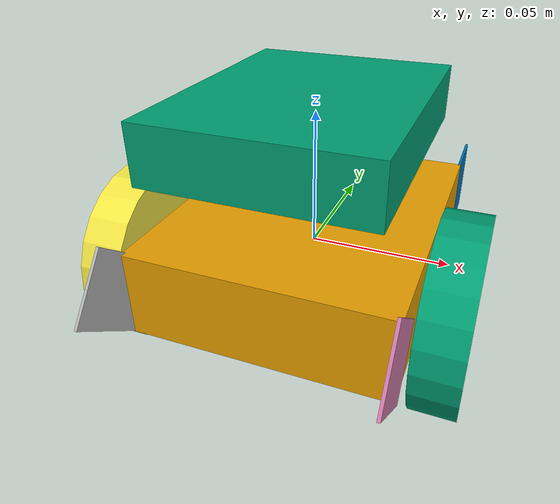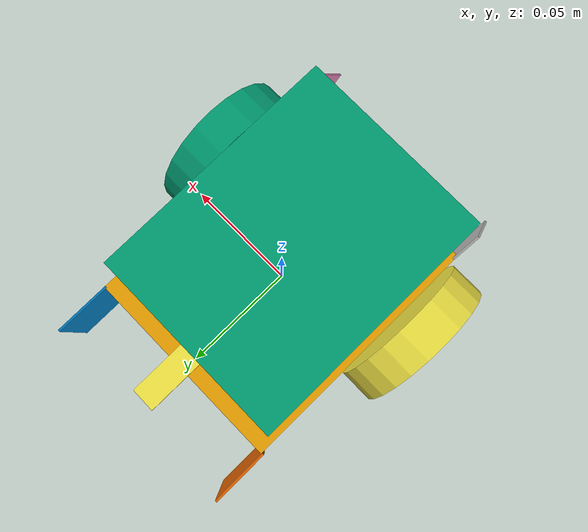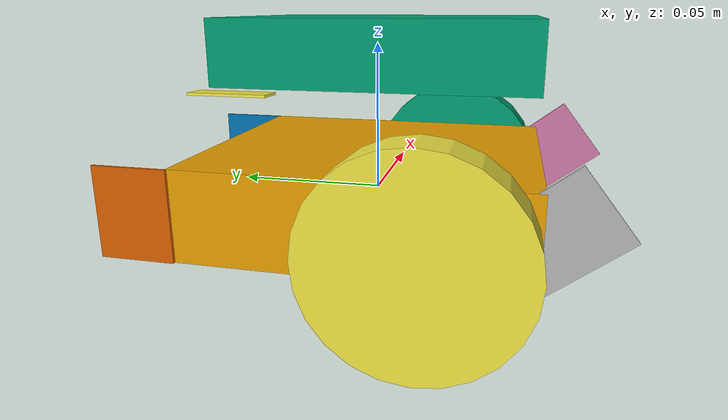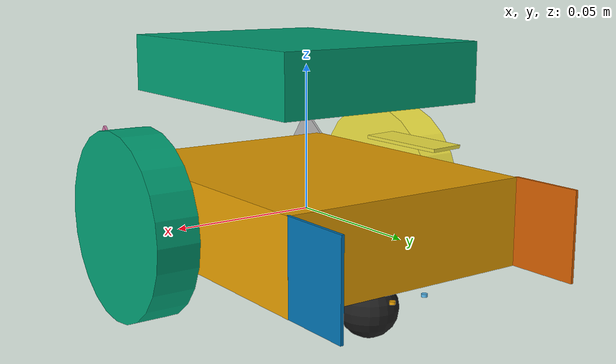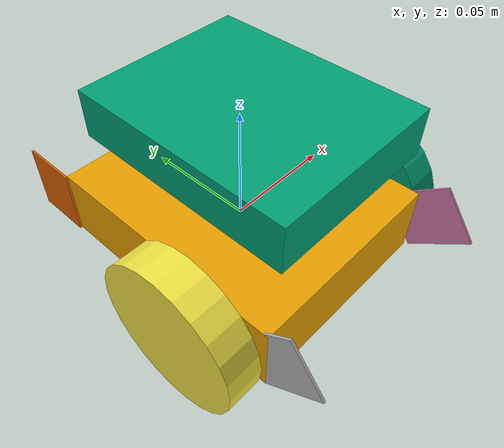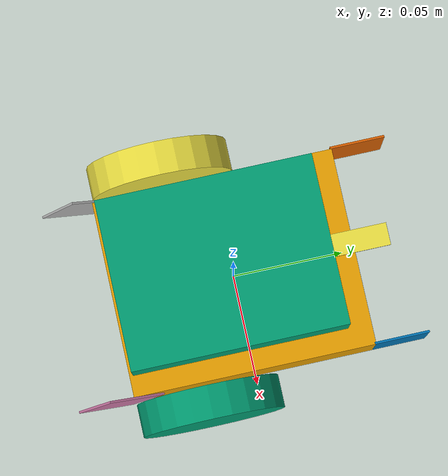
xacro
<?xml version='1.0'?>

<robot name="myrobot" xmlns:xacro="http://www.ros.org/wiki/xacro">

  <xacro:include filename="$(find mybot_description)/urdf/mybot.gazebo" />
  <xacro:include filename="$(find mybot_description)/urdf/materials.xacro" />
  <xacro:include filename="$(find mybot_description)/urdf/macros.xacro" />

  <link name='chassis'>
    <pose>0 0 0.1 0 0 0</pose>

    <inertial>
      <mass value="60.0"/>
      <origin xyz="0.0 0 0.1" rpy=" 0 0 0"/>
      <inertia
          ixx="0.1" ixy="0" ixz="0"
          iyy="0.1" iyz="0"
          izz="0.1"
      />
    </inertial>

    <collision name='collision'>
      <geometry>
        <box size=".09 .11 .03"/>
      </geometry>
    </collision>

    <visual name='chassis_visual'>
      <origin xyz="0 0 0" rpy=" 0 0 0"/>
      <geometry>
        <box size=".09 .11 .03"/>
      </geometry>
    </visual>
	</link>

  <link name='caster'>

    <visual>
      <origin rpy="0 0 0" xyz="0 0 0"/>
      <geometry>
        <sphere radius="0.01"/>
      </geometry>
      <material name="Black"/>
    </visual>
    <collision>
      <geometry>
        <sphere radius="0.01"/>
      </geometry>
      <origin rpy="0 0 0" xyz="0 0 0"/>
    </collision>
    <inertial>
      <mass value="0.5"/>
      <origin xyz="0 0 0"/>
      <inertia ixx="0.001" ixy="0.0" ixz="0.0" iyy="0.001" iyz="0.0" izz="0.001"/>
    </inertial>
</link>

  <link name='toit'>
    <pose>0 0 0 0 0 0</pose>

    <inertial>
      <mass value="0"/>
      <origin xyz="0 0 0" rpy=" 0 0 0"/>
      <inertia
          ixx="1.0" ixy="0" ixz="0"
          iyy="1.0" iyz="0"
          izz="1.0"
      />
    </inertial>

    <collision name='collision'>
      <geometry>
        <box size="0.075 0.095 0.02"/>
      </geometry>
    </collision>

    <visual name='toit_visual'>
      <origin xyz="0 0 0" rpy=" 0 0 0"/>
      <geometry>
        <box size="0.075 0.095 0.02"/>
      </geometry>
    </visual>
	</link>

	  <link name='SonarSensor'>
    <pose>0 0 0 0 0 0</pose>

    <inertial>
      <mass value="10"/>
      <origin xyz="0 0 0" rpy=" 0 0 0"/>
      <inertia
          ixx="1.0" ixy="0" ixz="0"
          iyy="1.0" iyz="0"
          izz="1.0"
      />
    </inertial>

    <collision name='collision'>
      <geometry>
        <box size="0.03 0.001 0.01"/>
      </geometry>
    </collision>

    <visual name='SonarSensor_visual'>
      <origin xyz="0 0 0" rpy=" 0 0 0"/>
      <geometry>
        <box size="0.03 0.001 0.01"/>
      </geometry>
    </visual>
	</link>

	  <link name='machin av d'>
    <pose>0 0 0 0 0 0</pose>

    <inertial>
      <mass value="0"/>
      <origin xyz="0 0 0" rpy=" 0 0 0"/>
      <inertia
          ixx="1.0" ixy="0" ixz="0"
          iyy="1.0" iyz="0"
          izz="1.0"
      />
    </inertial>

    <collision name='collision'>
      <geometry>
        <box size="0.001 0.025 0.032"/>
      </geometry>
    </collision>

    <visual name='machin av d_visual'>
      <origin xyz="0 0 0" rpy=" 0 0 0"/>
      <geometry>
        <box size="0.001 0.025 0.03"/>
      </geometry>
    </visual>
</link>

	  <link name='machin av g'>
    <pose>0 0 0 0 0 0</pose>

    <inertial>
      <mass value="0"/>
      <origin xyz="0 0 0" rpy=" 0 0 0"/>
      <inertia
          ixx="1.0" ixy="0" ixz="0"
          iyy="1.0" iyz="0"
          izz="1.0"
      />
    </inertial>

    <collision name='collision'>
      <geometry>
        <box size="0.001 0.025 0.032"/>
      </geometry>
    </collision>

    <visual name='machin av g_visual'>
      <origin xyz="0 0 0" rpy=" 0 0 0"/>
      <geometry>
        <box size="0.001 0.025 0.03"/>
      </geometry>
    </visual>
	</link>

	<link name='machin ar d'>
    <pose>0 0 0 0 0 0</pose>

    <inertial>
      <mass value="0"/>
      <origin xyz="0 0 0" rpy=" 0 0 0"/>
      <inertia
          ixx="1.0" ixy="0" ixz="0"
          iyy="1.0" iyz="0"
          izz="1.0"
      />
    </inertial>

    <collision name='collision'>
      <geometry>
        <box size="0.001 0.025 0.03"/>
      </geometry>
    </collision>

    <visual name='machin ar d_visual'>
      <origin xyz="0 0 0" rpy=" 0 0 0"/>
      <geometry>
        <box size="0.001 0.025 0.03"/>
      </geometry>
    </visual>
	</link>

	<link name='machin ar g'>
    <pose>0 0 0 0 0 0</pose>

    <inertial>
      <mass value="0"/>
      <origin xyz="0 0 0" rpy=" 0 0 0"/>
      <inertia
          ixx="1.0" ixy="0" ixz="0"
          iyy="1.0" iyz="0"
          izz="1.0"
      />
    </inertial>

    <collision name='collision'>
      <geometry>
        <box size="0.001 0.025 0.03"/>
      </geometry>
    </collision>

    <visual name='machin ar g_visual'>
      <origin xyz="0 0 0" rpy=" 0 0 0"/>
      <geometry>
        <box size="0.001 0.025 0.03"/>
      </geometry>
    </visual>
	</link>

  <link name="suiveurLigneD">
    <origin xyz="0 0 0" rpy="0 0 0"/>
    <collision name="collision">
      <origin xyz="0 0 0" rpy="0 1.5707 0"/>
      <geometry>
        <cylinder radius="0.001" length="0.001"/>
      </geometry>
    </collision>
    <visual name="suiveurLigneD_visual">
      <origin xyz="0 0 0" rpy="0 1.5707 0"/>
      <geometry>
        <cylinder radius="0.001" length="0.001"/>
      </geometry>
    </visual>
    <inertial>
      <origin xyz="0 0 0" rpy="0 -0 0"/>
      <mass value="0"/>
      <cylinder_inertia m="5" r="0.1" h="0.05"/>
      <inertia
        ixx="1.0" ixy="0.0" ixz="0.0"
        iyy="1.0" iyz="0.0"
        izz="1.0"/>
    </inertial>
  </link>

    <link name="suiveurLigneG">
    <origin xyz="0 0 0" rpy="0 0 0"/>
    <collision name="collision">
      <origin xyz="0 0 0" rpy="0 1.5707 0"/>
      <geometry>
        <cylinder radius="0.001" length="0.001"/>
      </geometry>
    </collision>
    <visual name="suiveurLigneG_visual">
      <origin xyz="0 0 0" rpy="0 1.5707 0"/>
      <geometry>
        <cylinder radius="0.001" length="0.001"/>
      </geometry>
    </visual>
    <inertial>
      <origin xyz="0 0 0" rpy="0 -0 0"/>
      <mass value="0"/>
      <cylinder_inertia m="5" r="0.1" h="0.05"/>
      <inertia
        ixx="1.0" ixy="0.0" ixz="0.0"
        iyy="1.0" iyz="0.0"
        izz="1.0"/>
    </inertial>
  </link>

  <link name="right_wheel">
    <origin xyz="0 0 0" rpy="0 0 0"/>
    <collision name="collision">
      <origin xyz="0 0 0" rpy="0 1.5707 1.5707"/>
      <geometry>
        <cylinder radius="0.0325" length="0.015"/>
      </geometry>
    </collision>
    <visual name="right_wheel_visual">
      <origin xyz="0 0 0" rpy="1.5707 -0 0"/>
      <geometry>
        <cylinder radius="0.0325" length="0.015"/>
      </geometry>
    </visual>
    <inertial>
      <origin xyz="0 0 0" rpy="0 0 0"/>
      <mass value="0.5"/>
      <cylinder_inertia m="5" r="0.1" h="0.05"/>
      <inertia
        ixx="1.0" ixy="0.0" ixz="0.0"
        iyy="1.0" iyz="0.0"
        izz="1.0"/>
    </inertial>
  </link>

  <link name="left_wheel">
    <origin xyz="0 0 0" rpy="0 0 0"/>
    <collision name="collision">
      <origin xyz="0 0 0" rpy="0 1.5707 1.5707"/>
      <geometry>
        <cylinder radius="0.0325" length="0.015"/>
      </geometry>
    </collision>
    <visual name="left_wheel_visual">
      <origin xyz="0 0 0" rpy="1.5707 -0 0"/>
      <geometry>
        <cylinder radius="0.0325" length="0.015"/>
      </geometry>
    </visual>
    <inertial>
      <origin xyz="0 0 0" rpy="0 -0 0"/>
      <mass value="0.5"/>
      <cylinder_inertia m="5" r="0.1" h="0.05"/>
      <inertia
        ixx="1.0" ixy="0.0" ixz="0.0"
        iyy="1.0" iyz="0.0"
        izz="1.0"/>
    </inertial>
  </link>

  <joint type="fixed" name="Joint0">
    <origin xyz="0 -0.005008 0.048699" rpy="0 0 0"/>
    <child link="toit"/>
    <parent link="chassis"/>
    <joint_properties damping="0.0" friction="0.0"/>
  </joint>

    <joint type="fixed" name="Joint1">
    <origin xyz="-0.000058000 0.054542000 0.031253000" rpy="1.60103 0 1.5707"/>
    <child link="SonarSensor"/>
    <parent link="chassis"/>
    <joint_properties damping="0.0" friction="0.0"/>
  </joint>

    <joint type="fixed" name="Joint2">
    <origin xyz="0.044487000 0.066911000 0.000064000" rpy="2.2e-05 -6.4e-05 0.000748"/>
    <child link="machin av d"/>
    <parent link="chassis"/>
    <joint_properties damping="0.0" friction="0.0"/>
  </joint>

    <joint type="fixed" name="Joint3">
    <origin xyz="-0.045557000 0.066877000 0.000061000" rpy="3.3e-05 -9.6e-05 0.001122"/>
    <child link="machin av g"/>
    <parent link="chassis"/>
    <joint_properties damping="0.0" friction="0.0"/>
  </joint>

      <joint type="fixed" name="Joint4">
    <origin xyz="0.045503000 -0.061097000 0.005655200" rpy="0.912751 -9.6e-05 0.001120"/>
    <child link="machin ar d"/>
    <parent link="chassis"/>
    <joint_properties damping="0.0" friction="0.0"/>
  </joint>

      <joint type="fixed" name="Joint5">
    <origin xyz="-0.044485000 -0.059153000 0.004123000" rpy="0.912748 -9.6e-05 0.001122"/>
    <child link="machin ar g"/>
    <parent link="chassis"/>
    <joint_properties damping="0.0" friction="0.0"/>
  </joint>

      <joint type="fixed" name="Joint6">
    <origin xyz="0.006452000 0.054542000 -0.017747000" rpy="0  1.5707 0"/>
    <child link="suiveurLigneD"/>
    <parent link="chassis"/>
    <joint_properties damping="0.0" friction="0.0"/>
  </joint>

      <joint type="fixed" name="Joint7">
    <origin xyz="-0.006452000 0.054542000 -0.017869000" rpy="0  1.5707 0"/>
    <child link="suiveurLigneG"/>
    <parent link="chassis"/>
    <joint_properties damping="0.0" friction="0.0"/>
  </joint>

  <joint type="continuous" name="left_wheel_hinge">
    <origin xyz="-0.05508000 -0.022503000 -0.002503000" rpy="0 0 1.5707"/>
    <child link="left_wheel"/>
    <parent link="chassis"/>
    <axis xyz="0 1 0" rpy="0 0 0"/>
  </joint>

 <joint type="continuous" name="caster_hinge">
    <origin xyz="-0.000000000 0.0350 -0.026005000" rpy="0 0 0"/>
    <child link="caster"/>
    <parent link="chassis"/>
    <axis xyz="1 0 0" rpy="0 0 0"/>
  </joint>

  <joint type="continuous" name="right_wheel_hinge">
    <origin xyz="0.05508000 -0.022499000 -0.002503000" rpy="0 -0 1.5707"/>
    <child link="right_wheel"/>
    <parent link="chassis"/>
    <axis xyz="0 1 0" rpy="0 0 0"/>
  </joint>

</robot>
